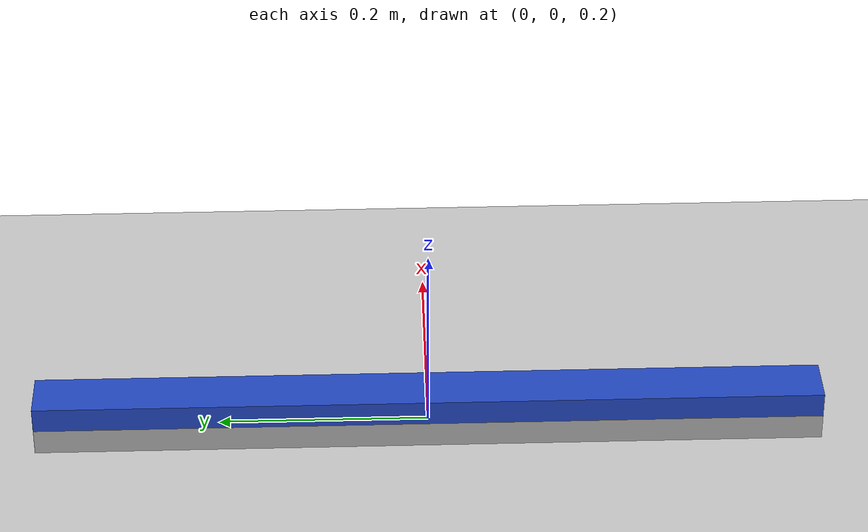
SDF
<sdf version="1.6">
 <world name="default">
  <model name="ground_plane">
   <static>1</static>
   <link name="link">
    <collision name="collision">
     <geometry><plane><normal>0 0 1</normal><size>100 100</size></plane></geometry>
     <surface><friction><ode><mu>100</mu><mu2>50</mu2></ode></friction></surface>
    </collision>
    <visual name="visual">
     <cast_shadows>0</cast_shadows>
     <geometry><plane><normal>0 0 1</normal><size>100 100</size></plane></geometry>
     <material>
      <script><uri>file://media/materials/scripts/gazebo.material</uri><name>Gazebo/Grey</name></script>
     </material>
    </visual>
   </link>
  </model>
  <model name="chair">
   <pose>-1e-06 -0 2e-06 -0 -0 -0</pose>
   <link name="low_part">
    <pose>-0.003 0 0.202 0 0.12304 0</pose>
    <inertial>
     <mass>1</mass>
     <inertia><ixx>1</ixx><ixy>0</ixy><ixz>0</ixz><iyy>1</iyy><iyz>0</iyz><izz>1</izz></inertia>
    </inertial>
    <collision name="collision_low"><geometry><box><size>0.05 0.75 0.025</size></box></geometry></collision>
    <visual name="visual_low"><geometry><box><size>0.05 0.75 0.025</size></box></geometry></visual>
   </link>
   <link name="high_part">
    <pose>0 0 0.226 0 0.12304 0</pose>
    <inertial>
     <mass>1</mass>
     <inertia><ixx>1</ixx><ixy>0</ixy><ixz>0</ixz><iyy>1</iyy><iyz>0</iyz><izz>1</izz></inertia>
    </inertial>
    <collision name="collision_high">
     <geometry><box><size>0.05 0.75 0.025</size></box></geometry>
     <max_contacts>4</max_contacts>
     <surface>
      <contact>
       <ode>
        <soft_erp>0.2</soft_erp>
        <soft_cfm>0</soft_cfm>
        <kp>1.8e+06</kp>
        <kd>100</kd>
        <max_vel>100</max_vel>
        <min_depth>0.0001</min_depth>
       </ode>
      </contact>
      <friction><ode><mu>1</mu><mu2>1</mu2><fdir1>0 0 0</fdir1><slip1>0</slip1><slip2>0</slip2></ode></friction>
      <bounce><restitution_coefficient>0</restitution_coefficient><threshold>100000</threshold></bounce>
     </surface>
    </collision>
    <visual name="visual_high">
     <material><script><name>Gazebo/Blue</name><uri>__default__</uri></script></material>
     <geometry><box><size>0.05 0.75 0.025</size></box></geometry>
    </visual>
   </link>
   <joint name="sensor_joint" type="fixed">
    <parent>low_part</parent>
    <child>high_part</child>
    <axis>
     <limit><lower>0</lower><upper>0</upper></limit>
     <xyz>0 0 0</xyz>
     <use_parent_model_frame>0</use_parent_model_frame>
    </axis>
    <sensor name="chair_ft_sensor" type="force_torque">
     <force_torque><frame>child</frame><measure_direction>parent_to_child</measure_direction></force_torque>
     <always_on>1</always_on>
     <visualize>1</visualize>
     <update_rate>100</update_rate>
     <plugin name="chair_FT_plugin" filename="libgazebo_yarp_forcetorque.so">
      <yarpConfigurationFile>model://chair/chair_gazebo_torque.ini</yarpConfigurationFile>
     </plugin>
    </sensor>
   </joint>
   <joint name="fixed to ground" type="fixed">
    <parent>world</parent>
    <child>low_part</child>
    <axis>
     <limit><lower>0</lower><upper>0</upper></limit>
     <xyz>0 0 0.4</xyz>
     <use_parent_model_frame>0</use_parent_model_frame>
    </axis>
   </joint>
  </model>
 </world>
</sdf>
